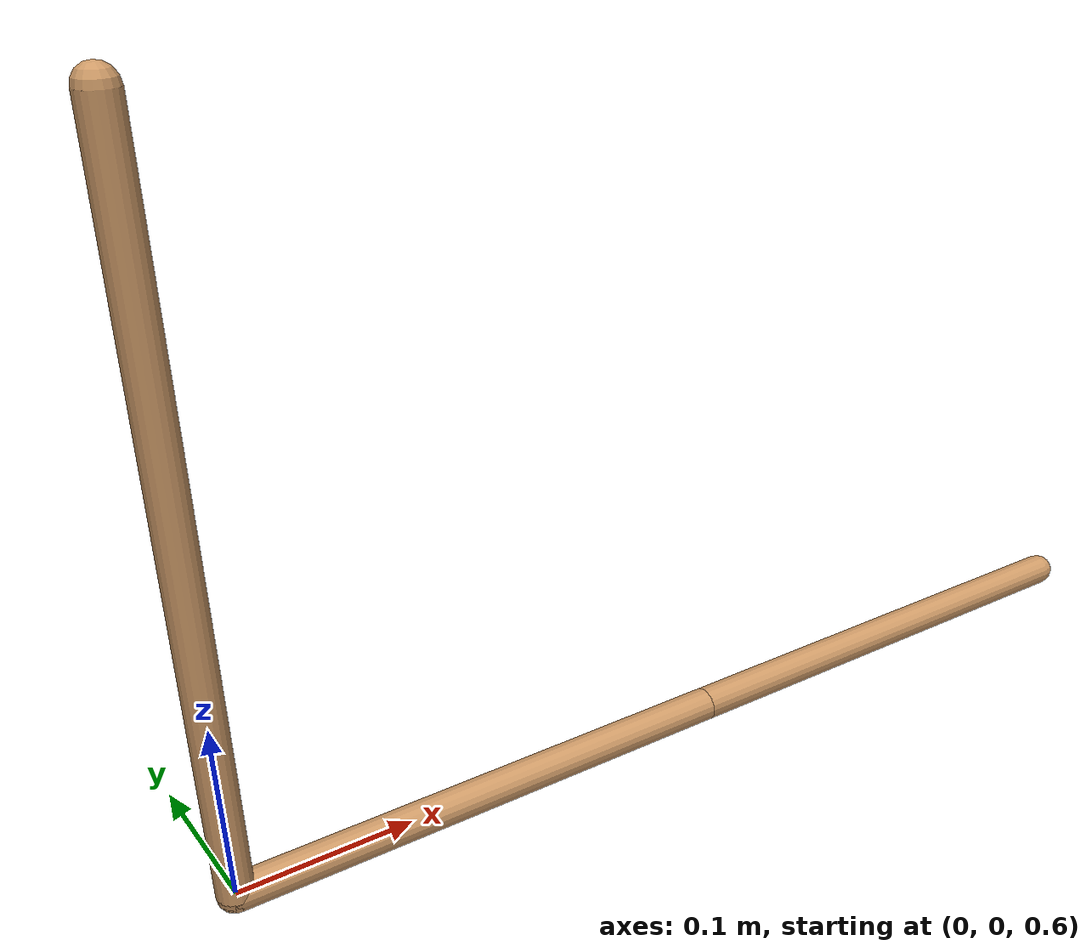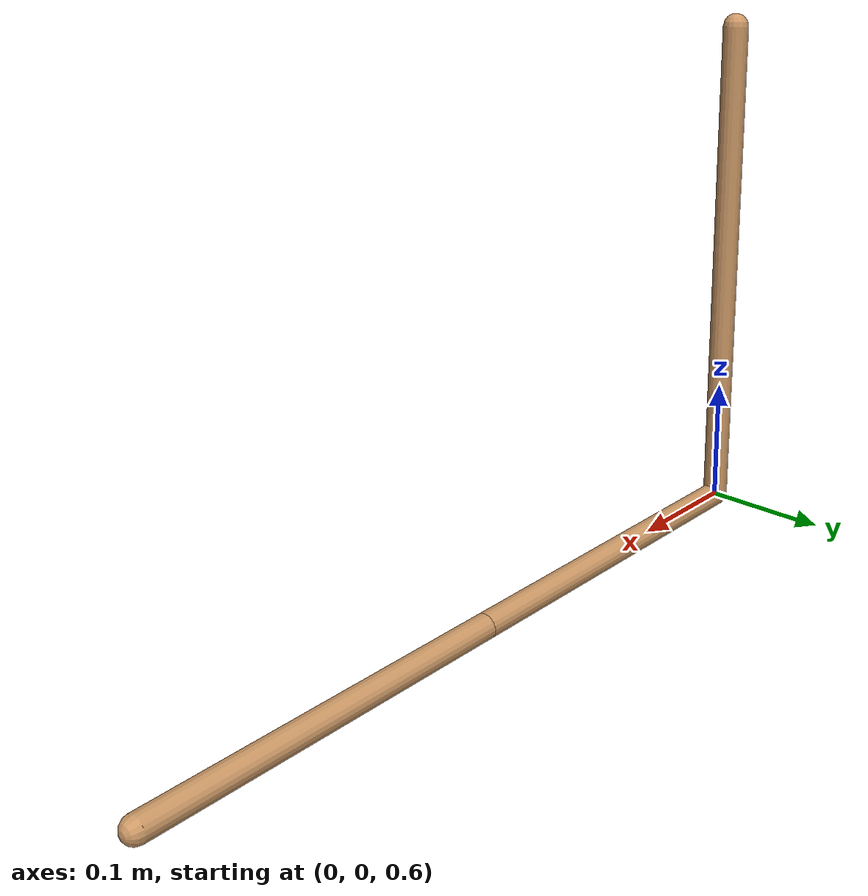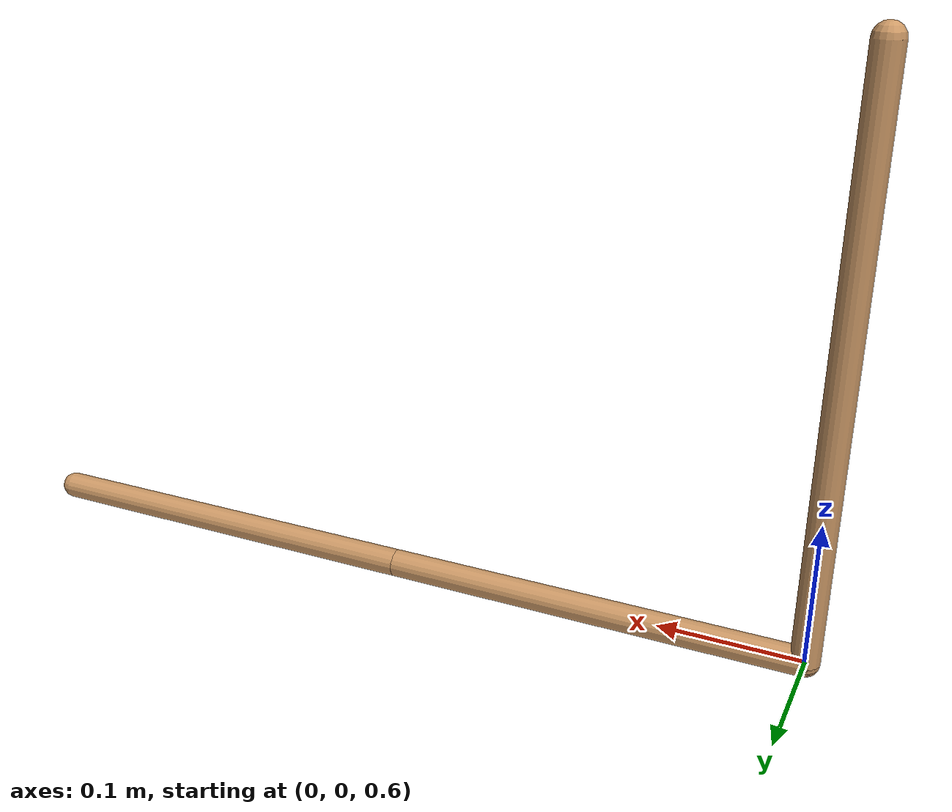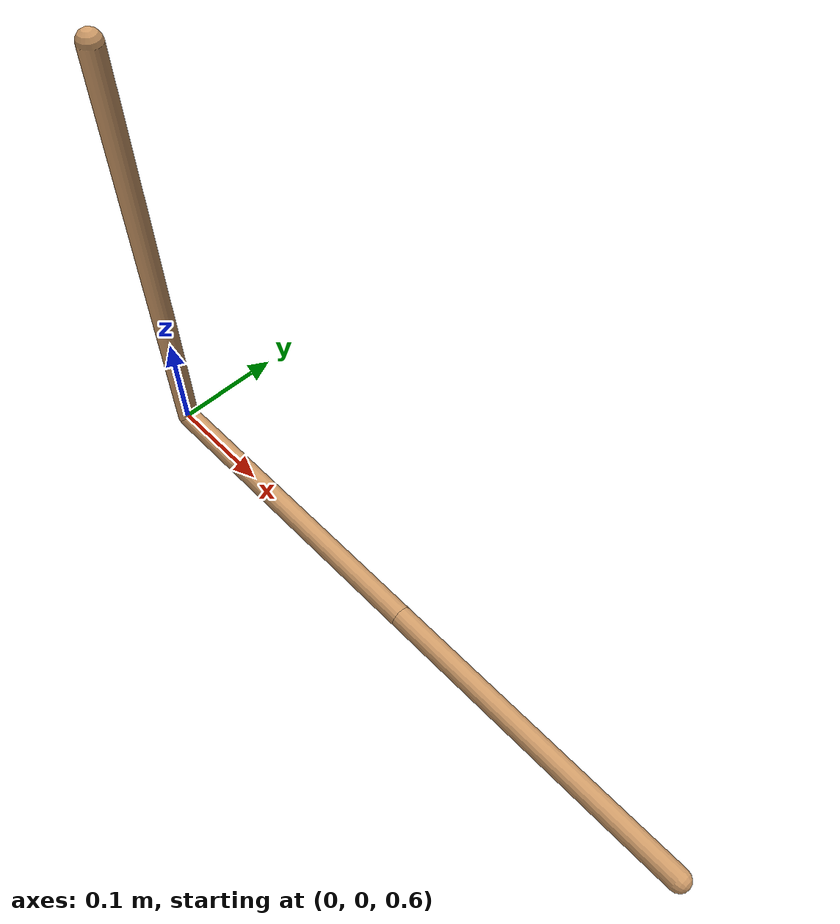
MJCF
<!--
    Made    : Jihyeok Choi
    Dates   : 04-13-2022
    - Two poles
-->
<mujoco model="example">
    <compiler coordinate="global"/>
    <default>
        <geom rgba=".8 .6 .4 1"/>
    </default>
    <asset>
        <texture type="skybox" builtin="gradient" rgb1="1 1 1" rgb2=".6 .8 1"
                 width="256" height="256"/>
    </asset>
    <worldbody>
        <light pos="0 1 1" dir="0 -1 -1" diffuse="1 1 1"/>
<!--        camera setting -->
        <camera name="fixed" pos="0 -2.2 2" xyaxes='1 0 0 0 1 1'/>
        <body name="pole1">
            <geom name="cap1" type="capsule" fromto="0 0 1  0 0 0.6" size="0.01"/>
            <body name="pole2">
                <geom name="cap2" type="capsule" fromto="0 0 0.6  0.3 0 0.6" size="0.01"/>
                <joint name="yHinge" type="hinge" pos="0 0 0.6" axis="0 1 0"/>
                <body name="pole3">
                    <geom name="cap3" type="capsule" fromto="0.3 0 0.6  0.6 0 0.6" size="0.01"/>
                    <joint name="yHinge2" type="hinge" pos="0.3 0 0.6" axis="0 1 0"/>
                </body>
            </body>
        </body>
    </worldbody>
    <actuator>
		<motor name="torque" joint="yHinge" gear="1" ctrlrange="-1 1" ctrllimited="true"/>
        <motor name="torque2" joint="yHinge2" gear="1" ctrlrange="-1 1" ctrllimited="true"/>
	</actuator>
</mujoco>
